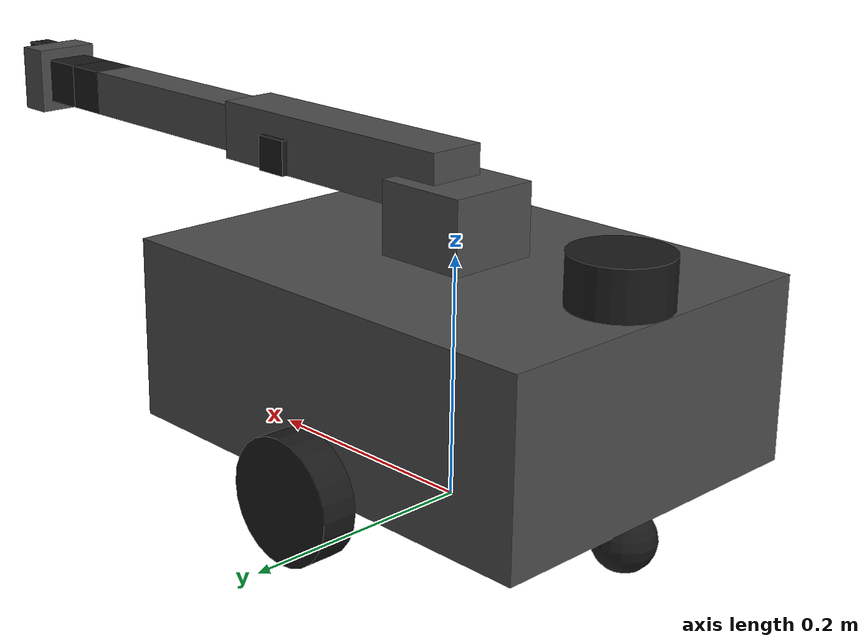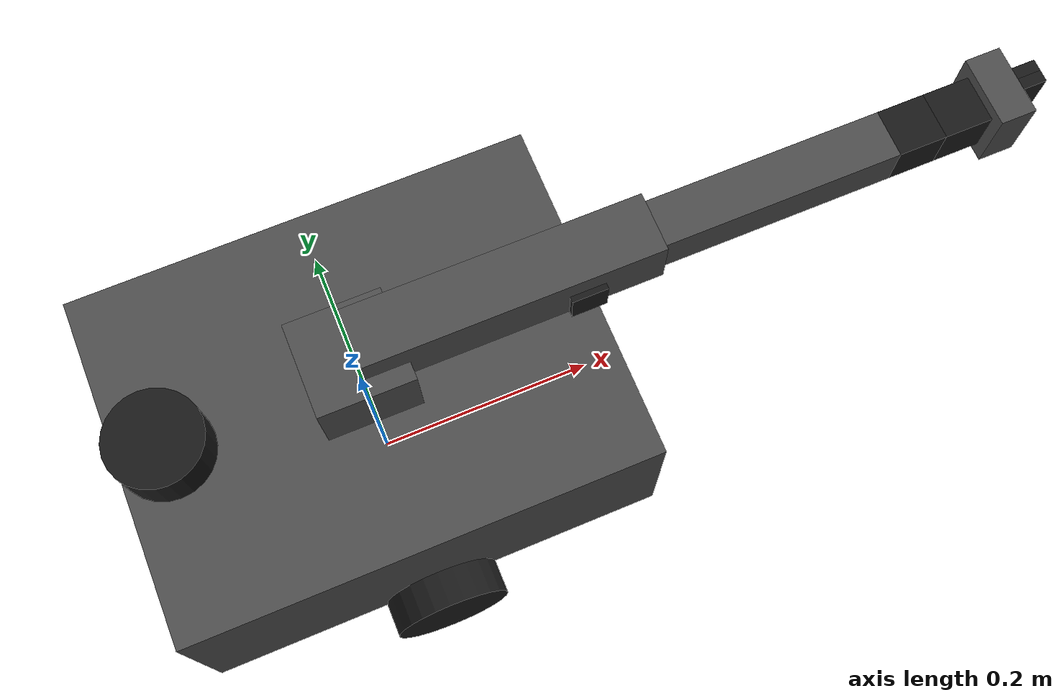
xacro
<?xml version="1.0"?>
<robot name="amms_robot" xmlns:xacro="http://www.ros.org/wiki/xacro">

  <xacro:include filename="materials.xacro"/>
  <xacro:include filename="base.xacro"/>
  <xacro:include filename="arm.xacro"/>
  <xacro:include filename="gripper.xacro"/>
  <xacro:include filename="camera.xacro"/>
  <xacro:include filename="lidar.xacro"/>
  <xacro:include filename="gazebo.xacro"/>

</robot>

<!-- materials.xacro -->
<robot xmlns:xacro="http://www.ros.org/wiki/xacro">

  <material name="chassis_grey">
    <color rgba="0.3 0.3 0.3 1.0"/>
  </material>

  <material name="wheel_black">
    <color rgba="0.1 0.1 0.1 1.0"/>
  </material>

  <material name="caster_black">
    <color rgba="0.1 0.1 0.1 1.0"/>
  </material>

</robot>

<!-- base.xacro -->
<robot xmlns:xacro="http://www.ros.org/wiki/xacro">

  <xacro:include filename="inertial_macros.xacro"/>

  <!-- Chassis dimensions (meters, kg) -->
  <xacro:property name="chassis_length" value="0.40"/>
  <xacro:property name="chassis_width" value="0.30"/>
  <xacro:property name="chassis_height" value="0.15"/>
  <xacro:property name="chassis_mass" value="5.0"/>

  <!-- Wheel dimensions -->
  <xacro:property name="wheel_radius" value="0.05"/>
  <xacro:property name="wheel_thickness" value="0.03"/>
  <xacro:property name="wheel_mass" value="0.2"/>

  <!-- Caster dimensions -->
  <xacro:property name="caster_radius" value="0.025"/>
  <xacro:property name="caster_mass" value="0.1"/>

  <link name="base_footprint"/>

  <joint name="base_footprint_joint" type="fixed">
    <parent link="base_footprint"/>
    <child link="base_link"/>
    <origin xyz="0 0 ${wheel_radius}" rpy="0 0 0"/>
  </joint>

  <!-- Chassis -->
  <link name="base_link">
    <visual>
      <origin xyz="0 0 ${chassis_height/2}" rpy="0 0 0"/>
      <geometry>
        <box size="${chassis_length} ${chassis_width} ${chassis_height}"/>
      </geometry>
      <material name="chassis_grey"/>
    </visual>
    <collision>
      <origin xyz="0 0 ${chassis_height/2}" rpy="0 0 0"/>
      <geometry>
        <box size="${chassis_length} ${chassis_width} ${chassis_height}"/>
      </geometry>
    </collision>
    <xacro:box_inertia
      mass="${chassis_mass}" x="${chassis_length}" y="${chassis_width}" z="${chassis_height}"
      origin_xyz="0 0 ${chassis_height/2}" origin_rpy="0 0 0"/>
  </link>

  <xacro:macro name="wheel" params="prefix reflect">
    <link name="${prefix}_wheel_link">
      <visual>
        <origin xyz="0 0 0" rpy="1.5708 0 0"/>
        <geometry>
          <cylinder radius="${wheel_radius}" length="${wheel_thickness}"/>
        </geometry>
        <material name="wheel_black"/>
      </visual>
      <collision>
        <origin xyz="0 0 0" rpy="1.5708 0 0"/>
        <geometry>
          <cylinder radius="${wheel_radius}" length="${wheel_thickness}"/>
        </geometry>
      </collision>
      <xacro:cylinder_inertia
        mass="${wheel_mass}" radius="${wheel_radius}" length="${wheel_thickness}"
        origin_xyz="0 0 0" origin_rpy="1.5708 0 0"/>
    </link>

    <joint name="${prefix}_wheel_joint" type="continuous">
      <parent link="base_link"/>
      <child link="${prefix}_wheel_link"/>
      <origin xyz="0 ${reflect * (chassis_width/2 + wheel_thickness/2)} 0" rpy="0 0 0"/>
      <axis xyz="0 1 0"/>
      <limit effort="10.0" velocity="10.0"/>
    </joint>
  </xacro:macro>

  <xacro:wheel prefix="left" reflect="1"/>
  <xacro:wheel prefix="right" reflect="-1"/>

  <xacro:macro name="caster" params="prefix reflect">
    <link name="${prefix}_caster_link">
      <visual>
        <geometry>
          <sphere radius="${caster_radius}"/>
        </geometry>
        <material name="caster_black"/>
      </visual>
      <collision>
        <geometry>
          <sphere radius="${caster_radius}"/>
        </geometry>
      </collision>
      <xacro:sphere_inertia
        mass="${caster_mass}" radius="${caster_radius}"
        origin_xyz="0 0 0" origin_rpy="0 0 0"/>
    </link>

    <joint name="${prefix}_caster_joint" type="fixed">
      <parent link="base_link"/>
      <child link="${prefix}_caster_link"/>
      <origin xyz="${reflect * (chassis_length/2 - caster_radius)} 0 ${-(wheel_radius - caster_radius)}" rpy="0 0 0"/>
    </joint>
  </xacro:macro>

  <xacro:caster prefix="front" reflect="1"/>
  <xacro:caster prefix="rear" reflect="-1"/>

</robot>

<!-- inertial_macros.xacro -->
<robot xmlns:xacro="http://www.ros.org/wiki/xacro">

  <xacro:macro name="box_inertia" params="mass x y z origin_xyz origin_rpy">
    <inertial>
      <origin xyz="${origin_xyz}" rpy="${origin_rpy}"/>
      <mass value="${mass}"/>
      <inertia
        ixx="${(1/12) * mass * (y*y + z*z)}" ixy="0.0" ixz="0.0"
        iyy="${(1/12) * mass * (x*x + z*z)}" iyz="0.0"
        izz="${(1/12) * mass * (x*x + y*y)}"/>
    </inertial>
  </xacro:macro>

  <xacro:macro name="cylinder_inertia" params="mass radius length origin_xyz origin_rpy">
    <inertial>
      <origin xyz="${origin_xyz}" rpy="${origin_rpy}"/>
      <mass value="${mass}"/>
      <inertia
        ixx="${(1/12) * mass * (3*radius*radius + length*length)}" ixy="0.0" ixz="0.0"
        iyy="${(1/12) * mass * (3*radius*radius + length*length)}" iyz="0.0"
        izz="${0.5 * mass * radius*radius}"/>
    </inertial>
  </xacro:macro>

  <xacro:macro name="sphere_inertia" params="mass radius origin_xyz origin_rpy">
    <inertial>
      <origin xyz="${origin_xyz}" rpy="${origin_rpy}"/>
      <mass value="${mass}"/>
      <inertia
        ixx="${(2/5) * mass * radius*radius}" ixy="0.0" ixz="0.0"
        iyy="${(2/5) * mass * radius*radius}" iyz="0.0"
        izz="${(2/5) * mass * radius*radius}"/>
    </inertial>
  </xacro:macro>

</robot>

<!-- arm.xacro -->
<robot xmlns:xacro="http://www.ros.org/wiki/xacro">

  <xacro:property name="link1_height" value="0.06"/>
  <xacro:property name="link1_side" value="0.08"/>
  <xacro:property name="link1_mass" value="0.3"/>

  <xacro:property name="upper_arm_length" value="0.25"/>
  <xacro:property name="upper_arm_side" value="0.05"/>
  <xacro:property name="upper_arm_mass" value="0.5"/>

  <xacro:property name="forearm_length" value="0.20"/>
  <xacro:property name="forearm_side" value="0.04"/>
  <xacro:property name="forearm_mass" value="0.3"/>

  <xacro:property name="wrist1_length" value="0.04"/>
  <xacro:property name="wrist1_side" value="0.04"/>
  <xacro:property name="wrist1_mass" value="0.1"/>

  <xacro:property name="wrist2_length" value="0.04"/>
  <xacro:property name="wrist2_side" value="0.04"/>
  <xacro:property name="wrist2_mass" value="0.1"/>

  <xacro:property name="gripper_mount_length" value="0.03"/>
  <xacro:property name="gripper_mount_width" value="0.06"/>
  <xacro:property name="gripper_mount_mass" value="0.1"/>

  <!-- Joint 1: base_yaw. Mounts on top of the chassis, rotates the whole
       arm about the vertical (Z) axis. -->
  <joint name="base_yaw_joint" type="revolute">
    <parent link="base_link"/>
    <child link="link1"/>
    <origin xyz="0 0 ${chassis_height}" rpy="0 0 0"/>
    <axis xyz="0 0 1"/>
    <limit lower="-2.9671" upper="2.9671" effort="20.0" velocity="2.0"/>
    <dynamics damping="2.0" friction="0.5"/>
  </joint>

  <link name="link1">
    <visual>
      <origin xyz="0 0 ${link1_height/2}" rpy="0 0 0"/>
      <geometry>
        <box size="${link1_side} ${link1_side} ${link1_height}"/>
      </geometry>
      <material name="chassis_grey"/>
    </visual>
    <collision>
      <origin xyz="0 0 ${link1_height/2}" rpy="0 0 0"/>
      <geometry>
        <box size="${link1_side} ${link1_side} ${link1_height}"/>
      </geometry>
    </collision>
    <xacro:box_inertia
      mass="${link1_mass}" x="${link1_side}" y="${link1_side}" z="${link1_height}"
      origin_xyz="0 0 ${link1_height/2}" origin_rpy="0 0 0"/>
  </link>

  <!-- Joint 2: shoulder_pitch. Tips the upper arm forward/back. Every
       subsequent arm link extends along its own local +X axis, so a pitch
       joint (axis Y) tips that +X reach direction up/down. -->
  <joint name="shoulder_pitch_joint" type="revolute">
    <parent link="link1"/>
    <child link="upper_arm_link"/>
    <origin xyz="0 0 ${link1_height}" rpy="0 0 0"/>
    <axis xyz="0 1 0"/>
    <limit lower="-1.5708" upper="1.5708" effort="20.0" velocity="2.0"/>
    <dynamics damping="2.0" friction="0.5"/>
  </joint>

  <link name="upper_arm_link">
    <visual>
      <origin xyz="${upper_arm_length/2} 0 0" rpy="0 0 0"/>
      <geometry>
        <box size="${upper_arm_length} ${upper_arm_side} ${upper_arm_side}"/>
      </geometry>
      <material name="chassis_grey"/>
    </visual>
    <collision>
      <origin xyz="${upper_arm_length/2} 0 0" rpy="0 0 0"/>
      <geometry>
        <box size="${upper_arm_length} ${upper_arm_side} ${upper_arm_side}"/>
      </geometry>
    </collision>
    <xacro:box_inertia
      mass="${upper_arm_mass}" x="${upper_arm_length}" y="${upper_arm_side}" z="${upper_arm_side}"
      origin_xyz="${upper_arm_length/2} 0 0" origin_rpy="0 0 0"/>
  </link>

  <!-- Joint 3: elbow_pitch. 0 = straight arm; only bends one direction,
       like a real elbow. -->
  <joint name="elbow_pitch_joint" type="revolute">
    <parent link="upper_arm_link"/>
    <child link="forearm_link"/>
    <origin xyz="${upper_arm_length} 0 0" rpy="0 0 0"/>
    <axis xyz="0 1 0"/>
    <limit lower="0" upper="2.5" effort="15.0" velocity="2.0"/>
    <dynamics damping="1.5" friction="0.3"/>
  </joint>

  <link name="forearm_link">
    <visual>
      <origin xyz="${forearm_length/2} 0 0" rpy="0 0 0"/>
      <geometry>
        <box size="${forearm_length} ${forearm_side} ${forearm_side}"/>
      </geometry>
      <material name="chassis_grey"/>
    </visual>
    <collision>
      <origin xyz="${forearm_length/2} 0 0" rpy="0 0 0"/>
      <geometry>
        <box size="${forearm_length} ${forearm_side} ${forearm_side}"/>
      </geometry>
    </collision>
    <xacro:box_inertia
      mass="${forearm_mass}" x="${forearm_length}" y="${forearm_side}" z="${forearm_side}"
      origin_xyz="${forearm_length/2} 0 0" origin_rpy="0 0 0"/>
  </link>

  <!-- Joint 4: wrist_roll. Rolls about the forearm's own long axis (X).
       Like the wheels, a roll joint has no natural mechanical stop, so
       it's continuous rather than revolute. -->
  <joint name="wrist_roll_joint" type="continuous">
    <parent link="forearm_link"/>
    <child link="wrist1_link"/>
    <origin xyz="${forearm_length} 0 0" rpy="0 0 0"/>
    <axis xyz="1 0 0"/>
    <limit effort="5.0" velocity="3.0"/>
    <dynamics damping="0.3" friction="0.05"/>
  </joint>

  <link name="wrist1_link">
    <visual>
      <origin xyz="${wrist1_length/2} 0 0" rpy="0 0 0"/>
      <geometry>
        <box size="${wrist1_length} ${wrist1_side} ${wrist1_side}"/>
      </geometry>
      <material name="wheel_black"/>
    </visual>
    <collision>
      <origin xyz="${wrist1_length/2} 0 0" rpy="0 0 0"/>
      <geometry>
        <box size="${wrist1_length} ${wrist1_side} ${wrist1_side}"/>
      </geometry>
    </collision>
    <xacro:box_inertia
      mass="${wrist1_mass}" x="${wrist1_length}" y="${wrist1_side}" z="${wrist1_side}"
      origin_xyz="${wrist1_length/2} 0 0" origin_rpy="0 0 0"/>
  </link>

  <joint name="wrist_pitch_joint" type="revolute">
    <parent link="wrist1_link"/>
    <child link="wrist2_link"/>
    <origin xyz="${wrist1_length} 0 0" rpy="0 0 0"/>
    <axis xyz="0 1 0"/>
    <limit lower="-1.745" upper="1.745" effort="5.0" velocity="3.0"/>
    <dynamics damping="0.3" friction="0.05"/>
  </joint>

  <link name="wrist2_link">
    <visual>
      <origin xyz="${wrist2_length/2} 0 0" rpy="0 0 0"/>
      <geometry>
        <box size="${wrist2_length} ${wrist2_side} ${wrist2_side}"/>
      </geometry>
      <material name="wheel_black"/>
    </visual>
    <collision>
      <origin xyz="${wrist2_length/2} 0 0" rpy="0 0 0"/>
      <geometry>
        <box size="${wrist2_length} ${wrist2_side} ${wrist2_side}"/>
      </geometry>
    </collision>
    <xacro:box_inertia
      mass="${wrist2_mass}" x="${wrist2_length}" y="${wrist2_side}" z="${wrist2_side}"
      origin_xyz="${wrist2_length/2} 0 0" origin_rpy="0 0 0"/>
  </link>

  <!-- Joint 6: wrist_roll_2. Final orientation adjustment / gripper roll,
       about the gripper's own approach axis. Also continuous, same
       reasoning as wrist_roll. -->
  <joint name="wrist_roll_2_joint" type="continuous">
    <parent link="wrist2_link"/>
    <child link="gripper_mount_link"/>
    <origin xyz="${wrist2_length} 0 0" rpy="0 0 0"/>
    <axis xyz="1 0 0"/>
    <limit effort="5.0" velocity="3.0"/>
    <dynamics damping="0.3" friction="0.05"/>
  </joint>

  <link name="gripper_mount_link">
    <visual>
      <origin xyz="${gripper_mount_length/2} 0 0" rpy="0 0 0"/>
      <geometry>
        <box size="${gripper_mount_length} ${gripper_mount_width} ${gripper_mount_width}"/>
      </geometry>
      <material name="chassis_grey"/>
    </visual>
    <collision>
      <origin xyz="${gripper_mount_length/2} 0 0" rpy="0 0 0"/>
      <geometry>
        <box size="${gripper_mount_length} ${gripper_mount_width} ${gripper_mount_width}"/>
      </geometry>
    </collision>
    <xacro:box_inertia
      mass="${gripper_mount_mass}" x="${gripper_mount_length}" y="${gripper_mount_width}" z="${gripper_mount_width}"
      origin_xyz="${gripper_mount_length/2} 0 0" origin_rpy="0 0 0"/>
  </link>

  <!-- Step 4 (part 2) will add: gripper.xacro attaches its two fingers to
       gripper_mount_link. -->

</robot>

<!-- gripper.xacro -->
<robot xmlns:xacro="http://www.ros.org/wiki/xacro">

  <xacro:property name="finger_depth" value="0.02"/>
  <xacro:property name="finger_thickness" value="0.01"/>
  <xacro:property name="finger_height" value="0.06"/>
  <xacro:property name="finger_mass" value="0.05"/>

  <joint name="left_finger_joint" type="prismatic">
    <parent link="gripper_mount_link"/>
    <child link="left_finger_link"/>
    <origin xyz="${gripper_mount_length} ${finger_thickness/2} 0" rpy="0 0 0"/>
    <axis xyz="0 1 0"/>
    <limit lower="0.0" upper="0.04" effort="10.0" velocity="0.1"/>
  </joint>

  <link name="left_finger_link">
    <visual>
      <origin xyz="${finger_depth/2} 0 0" rpy="0 0 0"/>
      <geometry>
        <box size="${finger_depth} ${finger_thickness} ${finger_height}"/>
      </geometry>
      <material name="wheel_black"/>
    </visual>
    <collision>
      <origin xyz="${finger_depth/2} 0 0" rpy="0 0 0"/>
      <geometry>
        <box size="${finger_depth} ${finger_thickness} ${finger_height}"/>
      </geometry>
    </collision>
    <xacro:box_inertia
      mass="${finger_mass}" x="${finger_depth}" y="${finger_thickness}" z="${finger_height}"
      origin_xyz="${finger_depth/2} 0 0" origin_rpy="0 0 0"/>
  </link>

  <joint name="right_finger_joint" type="prismatic">
    <parent link="gripper_mount_link"/>
    <child link="right_finger_link"/>
    <origin xyz="${gripper_mount_length} ${-finger_thickness/2} 0" rpy="0 0 0"/>
    <axis xyz="0 1 0"/>
    <limit lower="-0.04" upper="0.0" effort="10.0" velocity="0.1"/>
    <mimic joint="left_finger_joint" multiplier="-1.0" offset="0.0"/>
  </joint>

  <link name="right_finger_link">
    <visual>
      <origin xyz="${finger_depth/2} 0 0" rpy="0 0 0"/>
      <geometry>
        <box size="${finger_depth} ${finger_thickness} ${finger_height}"/>
      </geometry>
      <material name="wheel_black"/>
    </visual>
    <collision>
      <origin xyz="${finger_depth/2} 0 0" rpy="0 0 0"/>
      <geometry>
        <box size="${finger_depth} ${finger_thickness} ${finger_height}"/>
      </geometry>
    </collision>
    <xacro:box_inertia
      mass="${finger_mass}" x="${finger_depth}" y="${finger_thickness}" z="${finger_height}"
      origin_xyz="${finger_depth/2} 0 0" origin_rpy="0 0 0"/>
  </link>

</robot>

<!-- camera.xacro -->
<robot xmlns:xacro="http://www.ros.org/wiki/xacro">

  <xacro:property name="camera_size" value="0.03"/>
  <xacro:property name="camera_mass" value="0.05"/>
  <xacro:property name="camera_mast_height" value="0.05"/>

  <joint name="camera_joint" type="fixed">
    <parent link="base_link"/>
    <child link="camera_link"/>
    <origin xyz="${chassis_length/2 - camera_size/2} 0 ${chassis_height + camera_mast_height}" rpy="0 0 0"/>
  </joint>

  <link name="camera_link">
    <visual>
      <geometry>
        <box size="${camera_size} ${camera_size*2} ${camera_size}"/>
      </geometry>
      <material name="wheel_black"/>
    </visual>
    <collision>
      <geometry>
        <box size="${camera_size} ${camera_size*2} ${camera_size}"/>
      </geometry>
    </collision>
    <xacro:box_inertia
      mass="${camera_mass}" x="${camera_size}" y="${camera_size*2}" z="${camera_size}"
      origin_xyz="0 0 0" origin_rpy="0 0 0"/>
  </link>

  <joint name="camera_optical_joint" type="fixed">
    <parent link="camera_link"/>
    <child link="camera_link_optical"/>
    <origin xyz="0 0 0" rpy="-1.5708 0 -1.5708"/>
  </joint>

  <link name="camera_link_optical"/>

  <gazebo reference="camera_link">
    <sensor name="camera" type="rgbd_camera">
      <always_on>true</always_on>
      <update_rate>5</update_rate>
      <visualize>true</visualize>
      <topic>camera</topic>
      <camera>
        <horizontal_fov>1.047</horizontal_fov>
        <image>
          <width>640</width>
          <height>480</height>
          <format>R8G8B8</format>
        </image>
        <clip>
          <near>0.1</near>
          <far>10.0</far>
        </clip>
        <depth_camera>
          <clip>
            <near>0.1</near>
            <far>10.0</far>
          </clip>
        </depth_camera>
        <optical_frame_id>camera_link_optical</optical_frame_id>
      </camera>
    </sensor>
  </gazebo>

</robot>

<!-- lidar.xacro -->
<robot xmlns:xacro="http://www.ros.org/wiki/xacro">

  <xacro:property name="lidar_radius" value="0.04"/>
  <xacro:property name="lidar_height" value="0.04"/>
  <xacro:property name="lidar_mass" value="0.15"/>

  <joint name="lidar_joint" type="fixed">
    <parent link="base_link"/>
    <child link="lidar_link"/>
    <origin xyz="${-(chassis_length/2 - lidar_radius)} 0 ${chassis_height + lidar_height/2}" rpy="0 0 0"/>
  </joint>

  <link name="lidar_link">
    <visual>
      <geometry>
        <cylinder radius="${lidar_radius}" length="${lidar_height}"/>
      </geometry>
      <material name="wheel_black"/>
    </visual>
    <collision>
      <geometry>
        <cylinder radius="${lidar_radius}" length="${lidar_height}"/>
      </geometry>
    </collision>
    <xacro:cylinder_inertia
      mass="${lidar_mass}" radius="${lidar_radius}" length="${lidar_height}"
      origin_xyz="0 0 0" origin_rpy="0 0 0"/>
  </link>

  <gazebo reference="lidar_link">
    <sensor name="lidar" type="gpu_lidar">
      <always_on>true</always_on>
      <update_rate>10</update_rate>
      <visualize>true</visualize>
      <topic>scan</topic>
      <lidar>
        <scan>
          <horizontal>
            <samples>360</samples>
            <resolution>1</resolution>
            <min_angle>-3.14159</min_angle>
            <max_angle>3.14159</max_angle>
          </horizontal>
        </scan>
        <range>
          <min>0.1</min>
          <max>15.0</max>
          <resolution>0.01</resolution>
        </range>
      </lidar>
    </sensor>
  </gazebo>

</robot>
